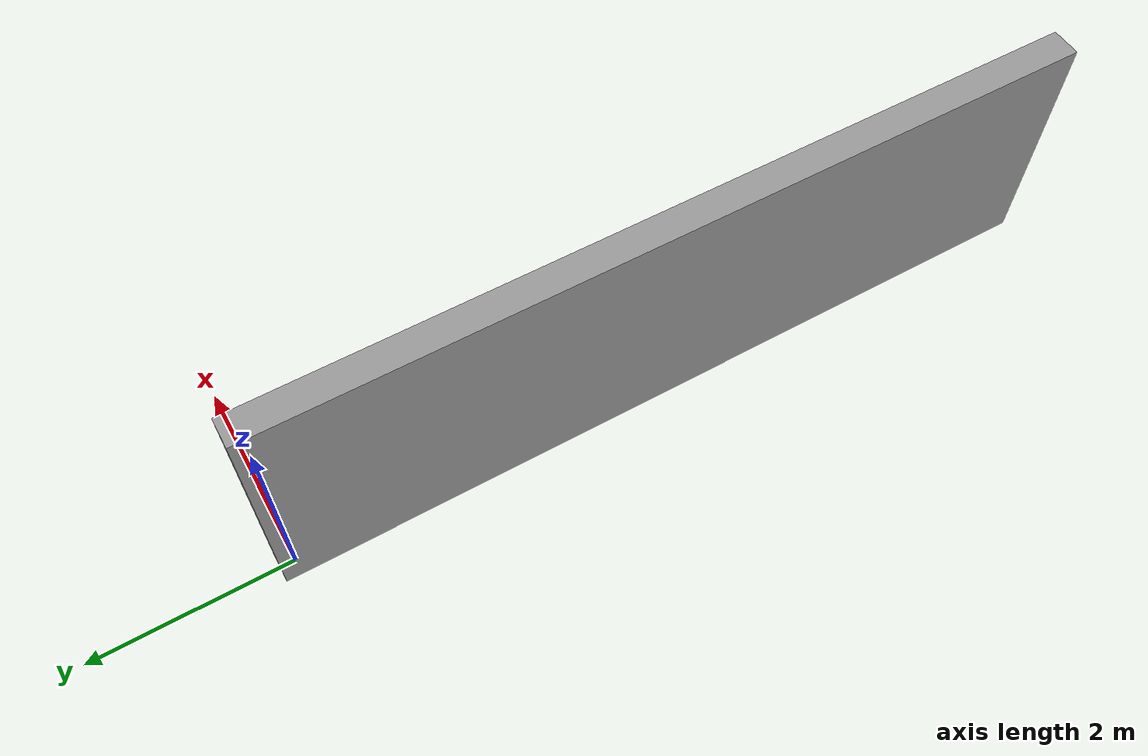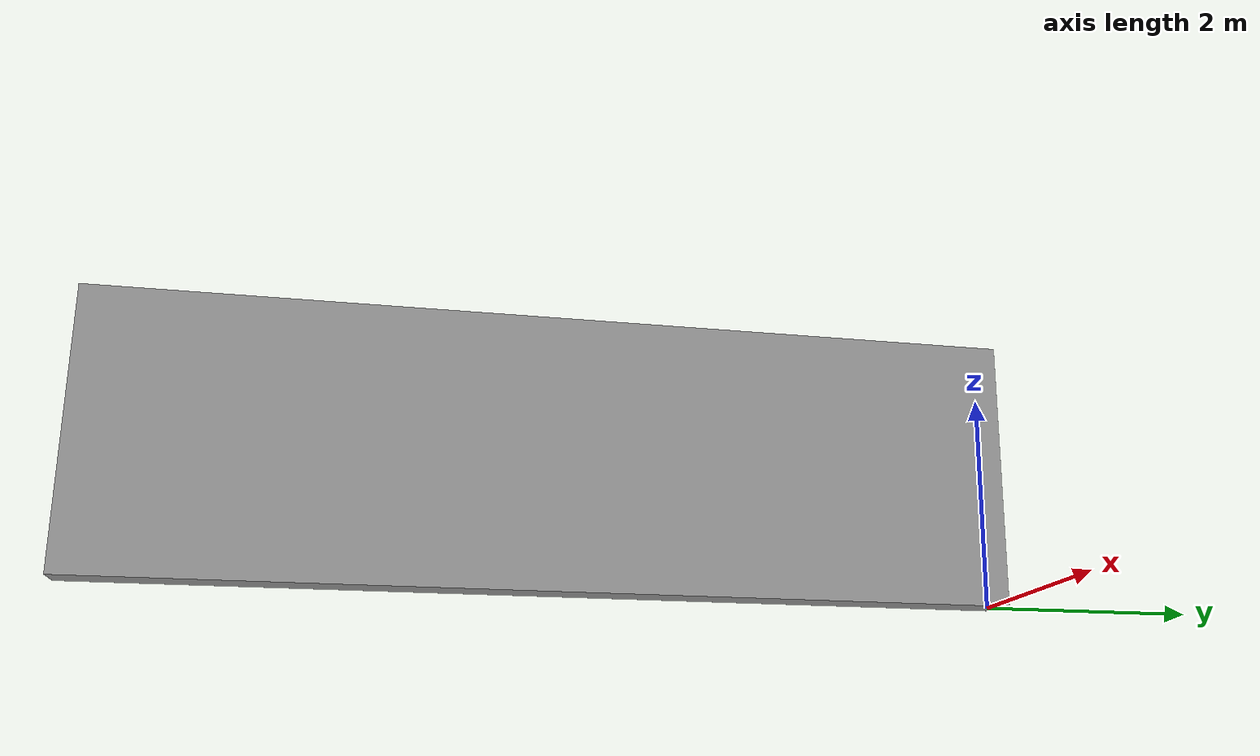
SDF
<?xml version='1.0'?>
<sdf version='1.6'>
  <model name='wall_8_03'>
    <pose frame=''>0 -4 0 0 -0 0</pose>
    <link name='Wall_16'>
      <collision name='Wall_16_Collision'>
        <geometry>
          <box>
            <size>8.3 0.3 2.5</size>
          </box>
        </geometry>
        <pose frame=''>0 0 1.25 0 -0 0</pose>
      </collision>
      <visual name='Wall_16_Visual'>
        <pose frame=''>0 0 1.25 0 -0 0</pose>
        <geometry>
          <box>
            <size>8.3 0.3 2.5</size>
          </box>
        </geometry>
        <material>
          <script>
            <uri>file://media/materials/scripts/gazebo.material</uri>
            <name>Gazebo/Grey</name>
          </script>
          <ambient>1 1 1 1</ambient>
        </material>
        <meta>
          <layer>0</layer>
        </meta>
      </visual>
      <pose frame=''>0 0 0 0 -0 -1.5708</pose>
    </link>
    <static>1</static>
  </model>
</sdf>
